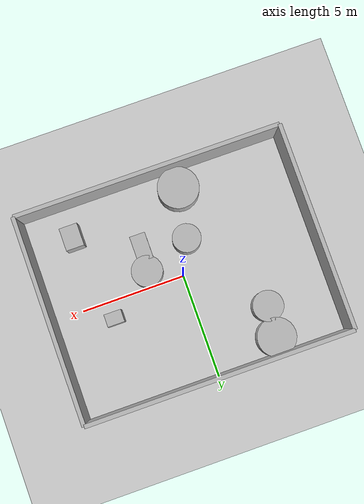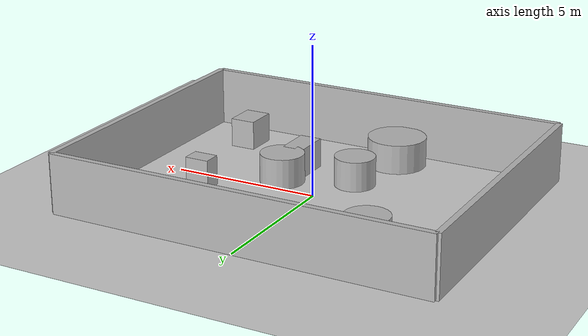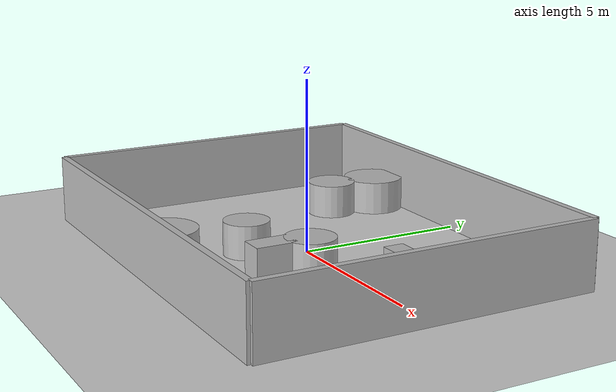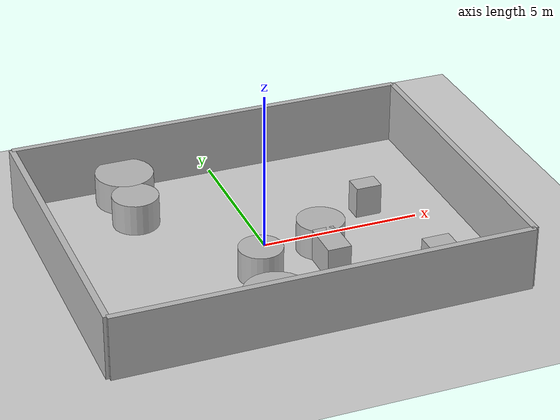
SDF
<?xml version="1.0"?>
<sdf version="1.6">
  <world name="env_29">

    <include><uri>model://ground_plane</uri></include>
    <include><uri>model://sun</uri></include>

    <!-- WALLS -->
    <model name="wall_north"><static>true</static><pose>0 4.962876983870303 1 0 0 0</pose>
      <link name="link"><collision name="collision">
        <geometry><box><size>12.815269887494928 0.2 2</size></box></geometry>
      </collision><visual name="visual">
        <geometry><box><size>12.815269887494928 0.2 2</size></box></geometry>
      </visual></link>
    </model>

    <model name="wall_south"><static>true</static><pose>0 -4.962876983870303 1 0 0 0</pose>
      <link name="link"><collision name="collision">
        <geometry><box><size>12.815269887494928 0.2 2</size></box></geometry>
      </collision><visual name="visual">
        <geometry><box><size>12.815269887494928 0.2 2</size></box></geometry>
      </visual></link>
    </model>

    <model name="wall_east"><static>true</static><pose>6.407634943747464 0 1 0 0 1.57</pose>
      <link name="link"><collision name="collision">
        <geometry><box><size>9.925753967740606 0.2 2</size></box></geometry>
      </collision><visual name="visual">
        <geometry><box><size>9.925753967740606 0.2 2</size></box></geometry>
      </visual></link>
    </model>

    <model name="wall_west"><static>true</static><pose>-6.407634943747464 0 1 0 0 1.57</pose>
      <link name="link"><collision name="collision">
        <geometry><box><size>9.925753967740606 0.2 2</size></box></geometry>
      </collision><visual name="visual">
        <geometry><box><size>9.925753967740606 0.2 2</size></box></geometry>
      </visual></link>
    </model>

    <!-- SENSOR -->

    <model name="lidar_sensor">
      <static>true</static>
      <pose>-4.614493620568117 -1.8682528942000394 0.4 0 0 0</pose>
      <link name="link">
        <sensor name="lidar" type="ray">
          <pose>0 0 0 0 0 0</pose>
          <visualize>true</visualize>
          <always_on>true</always_on>
          <update_rate>10</update_rate>
          <ray>
            <scan><horizontal>
              <samples>180</samples>
              <resolution>1</resolution>
              <min_angle>-3.14159</min_angle>
              <max_angle>3.14159</max_angle>
            </horizontal></scan>
            <range><min>0.15</min><max>20.0</max><resolution>0.01</resolution></range>
          </ray>
          <plugin name="lidar_plugin" filename="liblidar_plugin.so"/>
        </sensor>
      </link>
    </model>

    <!-- OBSTACLES -->

    <model name="obstacle_0">
      <static>true</static>
      <pose>3.6539927995120234 0.8229020575505084 0.5 0 0 0</pose>
      <link name="link">
        <collision name="collision">
          <geometry><box><size>0.82 0.6 1.0</size></box></geometry>
        </collision>
        <visual name="visual">
          <geometry><box><size>0.82 0.6 1.0</size></box></geometry>
        </visual>
      </link>
    </model>

    <model name="obstacle_1">
      <static>true</static>
      <pose>1.5143832232369991 -0.7222992282887004 0.5 0 0 0</pose>
      <link name="link">
        <collision name="collision">
          <geometry><cylinder><radius>0.74</radius><length>1.0</length></cylinder></geometry>
        </collision>
        <visual name="visual">
          <geometry><cylinder><radius>0.74</radius><length>1.0</length></cylinder></geometry>
        </visual>
      </link>
    </model>

    <model name="obstacle_2">
      <static>true</static>
      <pose>1.3984764321543954 -1.8523260687602847 0.5 0 0 0</pose>
      <link name="link">
        <collision name="collision">
          <geometry><box><size>0.74 1.25 1.0</size></box></geometry>
        </collision>
        <visual name="visual">
          <geometry><box><size>0.74 1.25 1.0</size></box></geometry>
        </visual>
      </link>
    </model>

    <model name="obstacle_3">
      <static>true</static>
      <pose>-3.210121879863121 2.6506569263384776 0.5 0 0 0</pose>
      <link name="link">
        <collision name="collision">
          <geometry><cylinder><radius>0.73</radius><length>1.0</length></cylinder></geometry>
        </collision>
        <visual name="visual">
          <geometry><cylinder><radius>0.73</radius><length>1.0</length></cylinder></geometry>
        </visual>
      </link>
    </model>

    <model name="obstacle_4">
      <static>true</static>
      <pose>-3.0994850178855002 4.127998019733629 0.5 0 0 0</pose>
      <link name="link">
        <collision name="collision">
          <geometry><cylinder><radius>0.92</radius><length>1.0</length></cylinder></geometry>
        </collision>
        <visual name="visual">
          <geometry><cylinder><radius>0.92</radius><length>1.0</length></cylinder></geometry>
        </visual>
      </link>
    </model>

    <model name="obstacle_5">
      <static>true</static>
      <pose>-0.7214132197467906 -1.5636430287459064 0.5 0 0 0</pose>
      <link name="link">
        <collision name="collision">
          <geometry><cylinder><radius>0.68</radius><length>1.0</length></cylinder></geometry>
        </collision>
        <visual name="visual">
          <geometry><cylinder><radius>0.68</radius><length>1.0</length></cylinder></geometry>
        </visual>
      </link>
    </model>

    <model name="obstacle_6">
      <static>true</static>
      <pose>4.287348682714084 -3.384258786507022 0.5 0 0 0</pose>
      <link name="link">
        <collision name="collision">
          <geometry><box><size>0.87 1.09 1.0</size></box></geometry>
        </collision>
        <visual name="visual">
          <geometry><box><size>0.87 1.09 1.0</size></box></geometry>
        </visual>
      </link>
    </model>

    <model name="obstacle_7">
      <static>true</static>
      <pose>-1.1379904476061213 -3.914652336395411 0.5 0 0 0</pose>
      <link name="link">
        <collision name="collision">
          <geometry><cylinder><radius>0.99</radius><length>1.0</length></cylinder></geometry>
        </collision>
        <visual name="visual">
          <geometry><cylinder><radius>0.99</radius><length>1.0</length></cylinder></geometry>
        </visual>
      </link>
    </model>

  </world>
</sdf>
